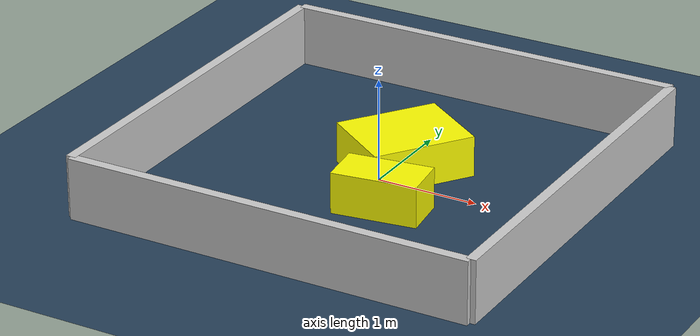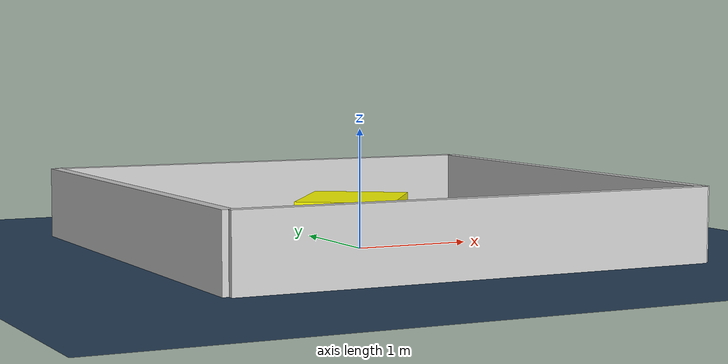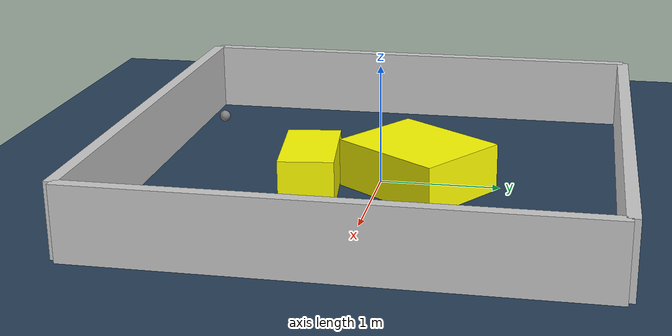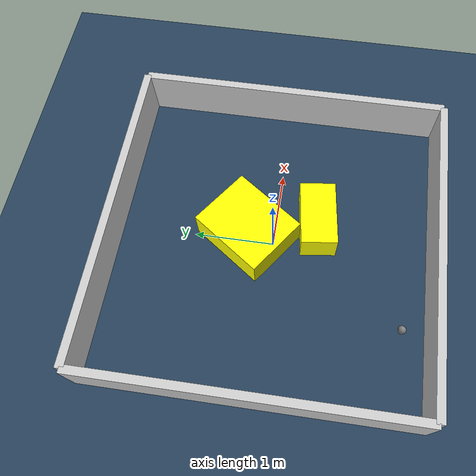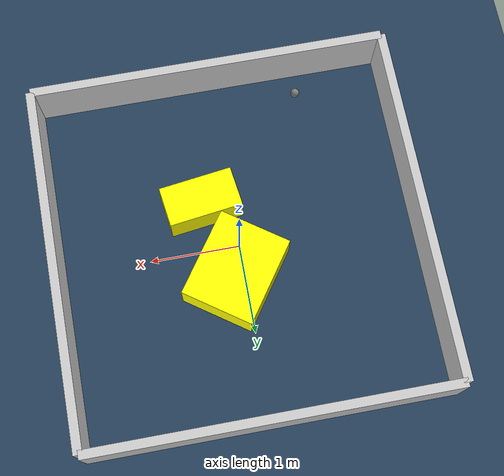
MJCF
<?xml version="1.0" ?>
<mujoco model="generated_environment">
  <option timestep="0.01" integrator="RK4" cone="elliptic"/>
  <default>
    <geom density="1"/>
  </default>
  <asset>
    <texture builtin="gradient" height="3072" rgb1="0.3 0.5 0.7" rgb2="0 0 0" type="skybox" width="512"/>
    <texture builtin="checker" height="300" mark="edge" markrgb="0.8 0.8 0.8" name="groundplane" rgb1="0.2 0.3 0.4" rgb2="0.1 0.2 0.3" type="2d" width="300"/>
    <material name="groundplane" reflectance="0.2" texrepeat="5 5" texture="groundplane" texuniform="true"/>
    <material name="robot" rgba="0.0 1.0 0.0 1"/>
  </asset>
  <worldbody>
    <light dir="0 0 -1" directional="true" pos="0 0 1.5"/>
    <geom condim="4" friction="1.0 0.005 0.001" material="groundplane" name="floor" size="0 0 0.05" type="plane"/>
    <body name="walls">
      <geom name="wall_1" condim="4" pos="-2.0 0.0 0.3" rgba="0.800000011920929 0.800000011920929 0.800000011920929 1.0" size="0.05 2.0 0.3" type="box"/>
      <geom name="wall_2" condim="4" pos="2.0 0.0 0.3" rgba="0.800000011920929 0.800000011920929 0.800000011920929 1.0" size="0.05 2.0 0.3" type="box"/>
      <geom name="wall_3" condim="4" pos="0.0 -2.0 0.3" rgba="0.800000011920929 0.800000011920929 0.800000011920929 1.0" size="2.0 0.05 0.3" type="box"/>
      <geom name="wall_4" condim="4" pos="0.0 2.0 0.3" rgba="0.800000011920929 0.800000011920929 0.800000011920929 1.0" size="2.0 0.05 0.3" type="box"/>
    </body>
    <body name="robot">
      <joint name="joint_x" type="slide" pos="0 0 0" axis="1 0 0"/>
      <joint name="joint_y" type="slide" pos="0 0 0" axis="0 1 0"/>
      <geom name="robot" type="sphere" pos="-0.9563342323552783 -1.6462088595551077 0.2" size="0.05" mass="5." friction="1.0 0.005 0.0001" condim="4"/>
      <site name="sensor_ball"/>
    </body>
    <body name="obstacle_1_movable">
      <geom name="obstacle_1_movable" condim="4" pos="0.3340743362202001 -0.5258858616622251 0.2" euler="0 0 277.5906880105299" friction="1.0 0.005 0.001" rgba="1 1 0 1" size="0.22411839126584115 0.4115327414155373 0.2" type="box" mass="0.1"/>
      <joint type="free"/>
    </body>
    <body name="obstacle_2_movable">
      <geom name="obstacle_2_movable" condim="4" pos="0.09362888259102808 0.3271676759259716 0.2" euler="0 0 144.93522831172754" friction="1.0 0.005 0.001" rgba="1 1 0 1" size="0.41151141306049016 0.5043798918472 0.2" type="box" mass="0.1"/>
      <joint type="free"/>
    </body>
  </worldbody>
  <actuator>
    <motor name="actuator_x" joint="joint_x" gear="1" ctrlrange="-1 1"/>
    <motor name="actuator_y" joint="joint_y" gear="1" ctrlrange="-1 1"/>
  </actuator>
</mujoco>
